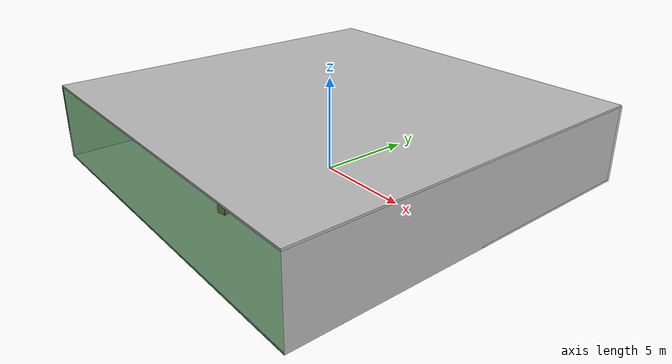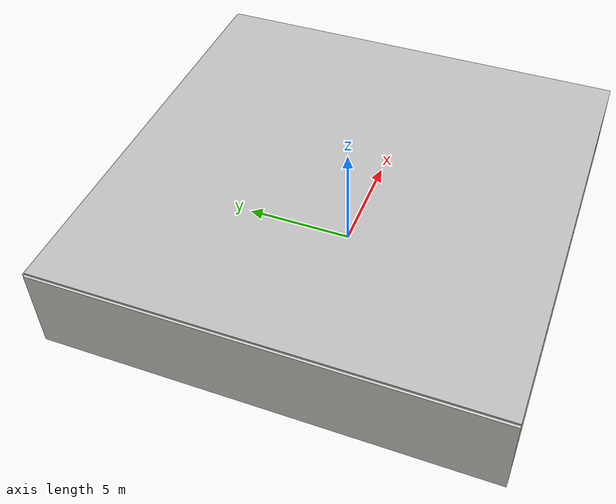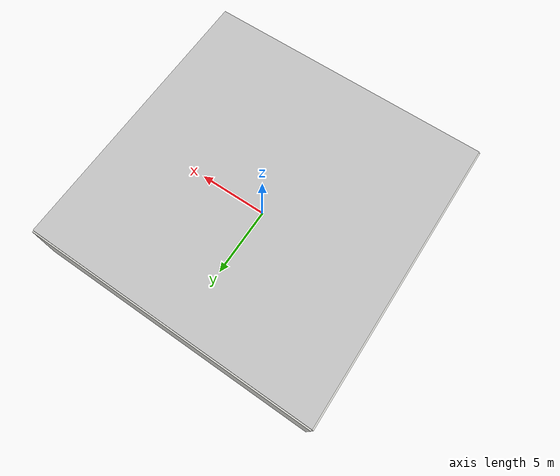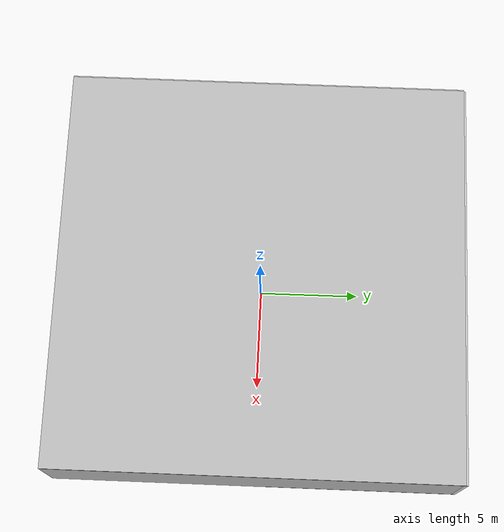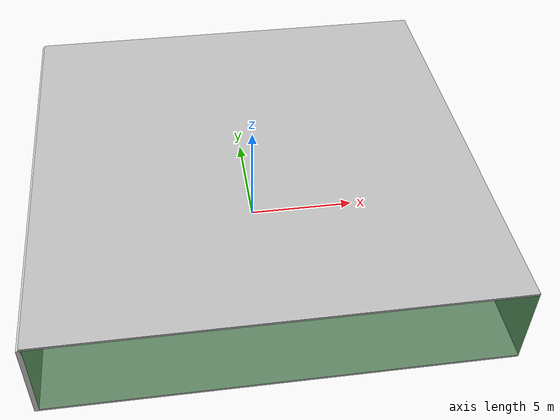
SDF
<sdf version="1.4">
 <world name="default">
  <physics type="ode">
   <max_step_size>0.001</max_step_size>
   <real_time_factor>1</real_time_factor>
   <real_time_update_rate>1000</real_time_update_rate>
   <gravity>0 0 -9.8</gravity>
  </physics>
  <scene><ambient>0.4 0.4 0.4 1</ambient><background>0.7 0.7 0.7 1</background><shadows>1</shadows></scene>
  <model name="Surrounding">
   <static>1</static>
   <link name="Ceiling">
    <collision name="Ceiling_Collision"><geometry><box><size>20 20 0.1</size></box></geometry></collision>
    <visual name="Ceiling_Visual">
     <geometry><box><size>20 20 0.1</size></box></geometry>
     <material>
      <script><uri>file://media/materials/scripts/gazebo.material</uri><name>Gazebo/LightOff</name></script>
     </material>
    </visual>
    <pose>0 0 4.05 0 0 0</pose>
   </link>
   <link name="Wall_South">
    <collision name="Wall_South_Collision">
     <geometry><box><size>20 0 4</size></box></geometry>
     <pose>0 0 2 0 -0 0</pose>
    </collision>
    <visual name="Wall_South_Visual">
     <pose>0 0 2 0 -0 0</pose>
     <geometry><box><size>20 0 4</size></box></geometry>
     <material>
      <script><uri>file://media/materials/scripts/gazebo.material</uri><name>Gazebo/GreenTransparent</name></script>
     </material>
    </visual>
    <velocity_decay><linear>0</linear><angular>0</angular></velocity_decay>
    <pose>0 -10 0 0 -0 0</pose>
   </link>
   <link name="Wall_East">
    <collision name="Wall_21_Collision">
     <geometry><box><size>20 0 4</size></box></geometry>
     <pose>0 0 2 0 -0 0</pose>
    </collision>
    <visual name="Wall_21_Visual">
     <pose>0 0 2 0 -0 0</pose>
     <geometry><box><size>20 0 4</size></box></geometry>
     <material>
      <script><uri>file://media/materials/scripts/gazebo.material</uri><name>Gazebo/PioneerBody</name></script>
     </material>
    </visual>
    <velocity_decay><linear>0</linear><angular>0</angular></velocity_decay>
    <pose>10 0 0 0 -0 1.5708</pose>
   </link>
   <link name="Wall_North">
    <collision name="Wall_22_Collision">
     <geometry><box><size>20 0.2 4</size></box></geometry>
     <pose>0 0 2 0 -0 0</pose>
    </collision>
    <visual name="Wall_22_Visual">
     <pose>0 0 2 0 -0 0</pose>
     <geometry><box><size>20 0.2 4</size></box></geometry>
     <material>
      <script><uri>file://media/materials/scripts/gazebo.material</uri><name>Gazebo/CeilingTiled</name></script>
     </material>
    </visual>
    <velocity_decay><linear>0</linear><angular>0</angular></velocity_decay>
    <pose>0 10 0 0 -0 0</pose>
   </link>
   <link name="Wall_West">
    <collision name="Wall_23_Collision">
     <geometry><box><size>20 0.2 4</size></box></geometry>
     <pose>0 0 2 0 -0 0</pose>
    </collision>
    <visual name="Wall_23_Visual">
     <pose>0 0 2 0 -0 0</pose>
     <geometry><box><size>20 0.2 4</size></box></geometry>
     <material>
      <script><uri>file://media/materials/scripts/gazebo.material</uri><name>Gazebo/CeilingTiled</name></script>
     </material>
    </visual>
    <velocity_decay><linear>0</linear><angular>0</angular></velocity_decay>
    <pose>-10 0 0 0 0 -1.5708</pose>
   </link>
   <link name="Ground_link">
    <collision name="collision">
     <pose>0 0 .05 0 -0 0</pose>
     <geometry><box><size>20 20 0.1</size></box></geometry>
    </collision>
    <visual name="visual">
     <pose>0 0 .05 0 -0 0</pose>
     <geometry><box><size>20 20 0.1</size></box></geometry>
     <material>
      <script><uri>file://media/materials/scripts/gazebo.material</uri><name>Gazebo/Pioneer2Body</name></script>
     </material>
    </visual>
   </link>
   <static>1</static>
  </model>
  <spherical_coordinates>
   <surface_model>EARTH_WGS84</surface_model>
   <latitude_deg>0</latitude_deg>
   <longitude_deg>0</longitude_deg>
   <elevation>0</elevation>
   <heading_deg>0</heading_deg>
  </spherical_coordinates>
  <light name="lightball_0" type="diffuse">
   <diffuse>0.8 0.8 0.8 1</diffuse>
   <specular>0.2 0.2 0.2 1</specular>
   <attenuation>
    <range>100</range>
    <constant>0.7</constant>
    <linear>0.01</linear>
    <quadratic>0.001</quadratic>
   </attenuation>
   <direction>-0.5 0.1 -0.9</direction>
   <pose>-4.12376330719 5.85121611135 2.19382287035 0 0 0</pose>
  </light>
  <light name="lightball_1" type="diffuse">
   <diffuse>0.8 0.8 0.8 1</diffuse>
   <specular>0.2 0.2 0.2 1</specular>
   <attenuation>
    <range>100</range>
    <constant>0.7</constant>
    <linear>0.01</linear>
    <quadratic>0.001</quadratic>
   </attenuation>
   <direction>-0.5 0.1 -0.9</direction>
   <pose>-7.92553679052 0.951721687002 3.41735487929 0 0 0</pose>
  </light>
  <light name="lightball_2" type="diffuse">
   <diffuse>0.8 0.8 0.8 1</diffuse>
   <specular>0.2 0.2 0.2 1</specular>
   <attenuation>
    <range>100</range>
    <constant>0.7</constant>
    <linear>0.01</linear>
    <quadratic>0.001</quadratic>
   </attenuation>
   <direction>-0.5 0.1 -0.9</direction>
   <pose>1.21670074359 -4.04785807269 1.91126196494 0 0 0</pose>
  </light>
  <light name="lightball_3" type="diffuse">
   <diffuse>0.8 0.8 0.8 1</diffuse>
   <specular>0.2 0.2 0.2 1</specular>
   <attenuation>
    <range>100</range>
    <constant>0.7</constant>
    <linear>0.01</linear>
    <quadratic>0.001</quadratic>
   </attenuation>
   <direction>-0.5 0.1 -0.9</direction>
   <pose>-4.16918058227 -9.42164294809 1.58947005077 0 0 0</pose>
  </light>
  <light name="lightball_4" type="diffuse">
   <diffuse>0.8 0.8 0.8 1</diffuse>
   <specular>0.2 0.2 0.2 1</specular>
   <attenuation>
    <range>100</range>
    <constant>0.7</constant>
    <linear>0.01</linear>
    <quadratic>0.001</quadratic>
   </attenuation>
   <direction>-0.5 0.1 -0.9</direction>
   <pose>8.54515091841 5.51217787063 3.35448172835 0 0 0</pose>
  </light>
  <light name="lightball_5" type="diffuse">
   <diffuse>0.8 0.8 0.8 1</diffuse>
   <specular>0.2 0.2 0.2 1</specular>
   <attenuation>
    <range>100</range>
    <constant>0.7</constant>
    <linear>0.01</linear>
    <quadratic>0.001</quadratic>
   </attenuation>
   <direction>-0.5 0.1 -0.9</direction>
   <pose>8.65875281436 5.14925481764 3.6281196877 0 0 0</pose>
  </light>
  <light name="lightball_6" type="diffuse">
   <diffuse>0.8 0.8 0.8 1</diffuse>
   <specular>0.2 0.2 0.2 1</specular>
   <attenuation>
    <range>100</range>
    <constant>0.7</constant>
    <linear>0.01</linear>
    <quadratic>0.001</quadratic>
   </attenuation>
   <direction>-0.5 0.1 -0.9</direction>
   <pose>-4.28853311154 0.923476718897 1.01474245805 0 0 0</pose>
  </light>
  <light name="lightball_7" type="diffuse">
   <diffuse>0.8 0.8 0.8 1</diffuse>
   <specular>0.2 0.2 0.2 1</specular>
   <attenuation>
    <range>100</range>
    <constant>0.7</constant>
    <linear>0.01</linear>
    <quadratic>0.001</quadratic>
   </attenuation>
   <direction>-0.5 0.1 -0.9</direction>
   <pose>7.36047765015 3.1864137865 1.00074460928 0 0 0</pose>
  </light>
  <light name="lightball_8" type="diffuse">
   <diffuse>0.8 0.8 0.8 1</diffuse>
   <specular>0.2 0.2 0.2 1</specular>
   <attenuation>
    <range>100</range>
    <constant>0.7</constant>
    <linear>0.01</linear>
    <quadratic>0.001</quadratic>
   </attenuation>
   <direction>-0.5 0.1 -0.9</direction>
   <pose>-1.56166151671 -1.79092988056 3.14472831045 0 0 0</pose>
  </light>
  <light name="lightball_9" type="diffuse">
   <diffuse>0.8 0.8 0.8 1</diffuse>
   <specular>0.2 0.2 0.2 1</specular>
   <attenuation>
    <range>100</range>
    <constant>0.7</constant>
    <linear>0.01</linear>
    <quadratic>0.001</quadratic>
   </attenuation>
   <direction>-0.5 0.1 -0.9</direction>
   <pose>-0.984805507891 -7.91222642071 3.69807013549 0 0 0</pose>
  </light>
  <light name="lightball_10" type="diffuse">
   <diffuse>0.8 0.8 0.8 1</diffuse>
   <specular>0.2 0.2 0.2 1</specular>
   <attenuation>
    <range>100</range>
    <constant>0.7</constant>
    <linear>0.01</linear>
    <quadratic>0.001</quadratic>
   </attenuation>
   <direction>-0.5 0.1 -0.9</direction>
   <pose>-1.55536863318 9.28261788121 2.27128942317 0 0 0</pose>
  </light>
  <light name="lightball_11" type="diffuse">
   <diffuse>0.8 0.8 0.8 1</diffuse>
   <specular>0.2 0.2 0.2 1</specular>
   <attenuation>
    <range>100</range>
    <constant>0.7</constant>
    <linear>0.01</linear>
    <quadratic>0.001</quadratic>
   </attenuation>
   <direction>-0.5 0.1 -0.9</direction>
   <pose>-8.68292831302 3.07763707431 2.60210696873 0 0 0</pose>
  </light>
  <include>
   <uri>model://robocup_3Dsim_goal</uri>
   <pose>-6.7082950657 -2.55018404484 0 0 0 0.787630301018</pose>
  </include>
  <include><uri>model://cabinet</uri><pose>-1.76227502326 8.65503061838 0 0 0 1.0471218435</pose></include>
  <include><uri>model://cabinet</uri><pose>0.702491511673 -6.77168449922 0 0 0 0.223947587792</pose></include>
  <include><uri>model://cabinet</uri><pose>5.52190050941 6.66096436607 0 0 0 2.63473875494</pose></include>
 </world>
</sdf>

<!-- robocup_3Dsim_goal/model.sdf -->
<sdf version="1.5">
  <model name="robocup_3d_goal">
    <static>true</static>
    <link name="left_post">
      <pose>0 1.05 0.45 0 0 0</pose>
      <collision name="collision">
        <geometry>
          <cylinder>
            <radius>0.05</radius>
            <length>0.9</length>
          </cylinder>
        </geometry>
      </collision>
      <visual name="visual">
        <geometry>
          <cylinder>
            <radius>0.05</radius>
            <length>0.9</length>
          </cylinder>
        </geometry>
        <material>
          <script>
            <uri>file://media/materials/scripts/gazebo.material</uri>
            <name>Gazebo/ZincYellow</name>
          </script>
        </material>
      </visual>
    </link>
    <link name="left_support_horiz_lower">
      <pose>0.30 1.05 0.01 0 0 0</pose>
      <collision name="collision">
        <geometry>
          <box>
            <size>0.50 0.02 0.02</size>
          </box>
        </geometry>
      </collision>
      <visual name="visual">
        <geometry>
          <box>
            <size>0.50 0.02 0.02</size>
          </box>
        </geometry>
        <material>
          <script>
            <uri>file://media/materials/scripts/gazebo.material</uri>
            <name>Gazebo/White</name>
          </script>
        </material>
      </visual>
    </link>
    <link name="left_support_horiz_upper">
      <pose>0.30 1.05 0.79 0 0 0</pose>
      <collision name="collision">
        <geometry>
          <box>
            <size>0.50 0.02 0.02</size>
          </box>
        </geometry>
      </collision>
      <visual name="visual">
        <geometry>
          <box>
            <size>0.50 0.02 0.02</size>
          </box>
        </geometry>
        <material>
          <script>
            <uri>file://media/materials/scripts/gazebo.material</uri>
            <name>Gazebo/White</name>
          </script>
        </material>
      </visual>
    </link>
    <link name="left_support_vertical">
      <pose>0.56 1.05 0.4 0 1.5708 0</pose>
      <collision name="collision">
        <geometry>
          <box>
            <size>0.80 0.02 0.02</size>
          </box>
        </geometry>
      </collision>
      <visual name="visual">
        <geometry>
          <box>
            <size>0.80 0.02 0.02</size>
          </box>
        </geometry>
        <material>
          <script>
            <uri>file://media/materials/scripts/gazebo.material</uri>
            <name>Gazebo/White</name>
          </script>
        </material>
      </visual>
    </link>
    <link name="right_support_horiz_lower">
      <pose>0.30 -1.05 0.01 0 0 0</pose>
      <collision name="collision">
        <geometry>
          <box>
            <size>0.50 0.02 0.02</size>
          </box>
        </geometry>
      </collision>
      <visual name="visual">
        <geometry>
          <box>
            <size>0.50 0.02 0.02</size>
          </box>
        </geometry>
        <material>
          <script>
            <uri>file://media/materials/scripts/gazebo.material</uri>
            <name>Gazebo/White</name>
          </script>
        </material>
      </visual>
    </link>
    <link name="right_support_horiz_upper">
      <pose>0.30 -1.05 0.79 0 0 0</pose>
      <collision name="collision">
        <geometry>
          <box>
            <size>0.50 0.02 0.02</size>
          </box>
        </geometry>
      </collision>
      <visual name="visual">
        <geometry>
          <box>
            <size>0.50 0.02 0.02</size>
          </box>
        </geometry>
        <material>
          <script>
            <uri>file://media/materials/scripts/gazebo.material</uri>
            <name>Gazebo/White</name>
          </script>
        </material>
      </visual>
    </link>
    <link name="right_support_vertical">
      <pose>0.56 -1.05 0.4 0 1.5708 0</pose>
      <collision name="collision">
        <geometry>
          <box>
            <size>0.80 0.02 0.02</size>
          </box>
        </geometry>
      </collision>
      <visual name="visual">
        <geometry>
          <box>
            <size>0.80 0.02 0.02</size>
          </box>
        </geometry>
        <material>
          <script>
            <uri>file://media/materials/scripts/gazebo.material</uri>
            <name>Gazebo/White</name>
          </script>
        </material>
      </visual>
    </link>
    <link name="center_support_horiz_lower">
      <pose>0.56 0 0.01 0 1.5708 0</pose>
      <collision name="collision">
        <geometry>
          <box>
            <size>0.02 2.08 0.02</size>
          </box>
        </geometry>
      </collision>
      <visual name="visual">
        <geometry>
          <box>
            <size>0.02 2.08 0.02</size>
          </box>
        </geometry>
        <material>
          <script>
            <uri>file://media/materials/scripts/gazebo.material</uri>
            <name>Gazebo/White</name>
          </script>
        </material>
      </visual>
    </link>
    <link name="center_support_horiz_upper">
      <pose>0.56 0 0.79 0 1.5708 0</pose>
      <collision name="collision">
        <geometry>
          <box>
            <size>0.02 2.08 0.02</size>
          </box>
        </geometry>
      </collision>
      <visual name="visual">
        <geometry>
          <box>
            <size>0.02 2.08 0.02</size>
          </box>
        </geometry>
        <material>
          <script>
            <uri>file://media/materials/scripts/gazebo.material</uri>
            <name>Gazebo/White</name>
          </script>
        </material>
      </visual>
    </link>
    <link name="right_post">
      <pose>0 -1.05 0.45 0 0 0</pose>
      <collision name="collision">
        <geometry>
          <cylinder>
            <radius>0.05</radius>
            <length>0.9</length>
          </cylinder>
        </geometry>
      </collision>
      <visual name="visual">
        <geometry>
          <cylinder>
            <radius>0.05</radius>
            <length>0.9</length>
          </cylinder>
        </geometry>
        <material>
          <script>
            <uri>file://media/materials/scripts/gazebo.material</uri>
            <name>Gazebo/ZincYellow</name>
          </script>
        </material>
      </visual>
    </link>
    <link name="crossbar">
      <pose>0 0 0.85 1.57 1.57 0</pose>
      <collision name="collision">
        <geometry>
          <cylinder>
            <radius>0.05</radius>
            <length>2.0</length>
          </cylinder>
        </geometry>
      </collision>
      <visual name="visual">
        <geometry>
          <cylinder>
            <radius>0.05</radius>
            <length>2.0</length>
          </cylinder>
        </geometry>
        <material>
          <script>
            <uri>file://media/materials/scripts/gazebo.material</uri>
            <name>Gazebo/ZincYellow</name>
          </script>
        </material>
      </visual>
    </link>
    <link name="center_net">
      <pose>0.56 0 0.40 0 0 0</pose>
      <collision name="collision">
        <geometry>
          <box>
            <size>0.01 2.1 0.80</size>
          </box>
        </geometry>
      </collision>
      <visual name="visual">
        <geometry>
          <box>
            <size>0.01 2.1 0.80</size>
          </box>
        </geometry>
        <material>
          <script>
            <uri>model://../model_source/models/robocup09_spl_field/materials/scripts/</uri>
            <uri>model://../model_source/models/robocup09_spl_field/materials/textures/</uri>
            <name>RoboCup/Net</name>
          </script>
        </material>
      </visual>
    </link>
    <link name="left_net">
      <pose>0.30 1.05 0.40 0 0 0</pose>
      <collision name="collision">
        <geometry>
          <box>
            <size>0.50 0.01 0.76</size>
          </box>
        </geometry>
      </collision>
      <visual name="visual">
        <geometry>
          <box>
            <size>0.50 0.01 0.76</size>
          </box>
        </geometry>
        <material>
          <script>
            <uri>model://../model_source/models/robocup09_spl_field/materials/scripts/</uri>
            <uri>model://../model_source/models/robocup09_spl_field/materials/textures/</uri>
            <name>RoboCup/Net</name>
          </script>
        </material>
      </visual>
    </link>
    <link name="right_net">
      <pose>0.30 -1.05 0.40 0 0 0</pose>
      <collision name="collision">
        <geometry>
          <box>
            <size>0.50 0.01 0.76</size>
          </box>
        </geometry>
      </collision>
      <visual name="visual">
        <geometry>
          <box>
            <size>0.50 0.01 0.76</size>
          </box>
        </geometry>
        <material>
          <script>
            <uri>model://../model_source/models/robocup09_spl_field/materials/scripts/</uri>
            <uri>model://../model_source/models/robocup09_spl_field/materials/textures/</uri>
            <name>RoboCup/Net</name>
          </script>
        </material>
      </visual>
    </link>
  </model>
</sdf>

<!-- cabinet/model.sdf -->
<sdf version="1.5">
  <model name="cabinet">
    <static>true</static>
    <link name="cabinet_bottom_plate">
      <inertial>
        <pose>0 0 -1 0 0 0</pose>
        <inertia>
          <ixx>2.050000</ixx>
          <ixy>0</ixy>
          <ixz>0</ixz>
          <iyy>2.050000</iyy>
          <iyz>0</iyz>
          <izz>2.050000</izz>
        </inertia>
        <mass>25.000000</mass>
      </inertial>
      <collision name="cabinet_bottom_plate_geom">
        <pose>0 0 0.010000 0 0 0</pose>
        <geometry>
          <box>
            <size>0.450000 0.450000 0.020000</size>
          </box>
        </geometry>
      </collision>
      <visual name="cabinet_bottom_plate_geom_visual">
        <pose>0 0 0.010000 0 0 0</pose>
        <geometry>
          <box>
            <size>0.450000 0.450000 0.020000</size>
          </box>
        </geometry>
        <material>
          <script>
            <uri>model://media/materials/scripts/gazebo.material</uri>
            <name>Gazebo/Wood</name>
          </script>
        </material>
      </visual>
      <collision name="cabinet_bottom_plate_geom_cabinet_back_plate">
        <pose>0.235000 0 0.510000 0 0 0</pose>
        <geometry>
          <box>
            <size>0.020000 0.450000 1.020000</size>
          </box>
        </geometry>
      </collision>
      <visual name="cabinet_bottom_plate_geom_cabinet_back_plate_visual">
        <pose>0.235000 0 0.510000 0 0 0</pose>
        <geometry>
          <box>
            <size>0.020000 0.450000 1.020000</size>
          </box>
        </geometry>
        <material>
          <script>
            <uri>model://media/materials/scripts/gazebo.material</uri>
            <name>Gazebo/Wood</name>
          </script>
        </material>
      </visual>
      <collision name="cabinet_bottom_plate_geom_cabinet_left_plate">
        <pose>0 0.235000 0.510000 0 0 0</pose>
        <geometry>
          <box>
            <size>0.450000 0.020000 1.020000</size>
          </box>
        </geometry>
      </collision>
      <visual name="cabinet_bottom_plate_geom_cabinet_left_plate_visual">
        <pose>0 0.235000 0.510000 0 0 0</pose>
        <geometry>
          <box>
            <size>0.450000 0.020000 1.020000</size>
          </box>
        </geometry>
        <material>
          <script>
            <uri>model://media/materials/scripts/gazebo.material</uri>
            <name>Gazebo/Wood</name>
          </script>
        </material>
      </visual>
      <collision name="cabinet_bottom_plate_geom_cabinet_middle_plate">
        <pose>0 0 0.510000 0 0 0</pose>
        <geometry>
          <box>
            <size>0.450000 0.450000 0.020000</size>
          </box>
        </geometry>
      </collision>
      <visual name="cabinet_bottom_plate_geom_cabinet_middle_plate_visual">
        <pose>0 0 0.510000 0 0 0</pose>
        <geometry>
          <box>
            <size>0.450000 0.450000 0.020000</size>
          </box>
        </geometry>
        <material>
          <script>
            <uri>model://media/materials/scripts/gazebo.material</uri>
            <name>Gazebo/Wood</name>
          </script>
        </material>
      </visual>
      <collision name="cabinet_bottom_plate_geom_cabinet_right_plate">
        <pose>0 -0.235000 0.510000 0 0 0</pose>
        <geometry>
          <box>
            <size>0.450000 0.020000 1.020000</size>
          </box>
        </geometry>
      </collision>
      <visual name="cabinet_bottom_plate_geom_cabinet_right_plate_visual">
        <pose>0 -0.235000 0.510000 0 0 0</pose>
        <geometry>
          <box>
            <size>0.450000 0.020000 1.020000</size>
          </box>
        </geometry>
        <material>
          <script>
            <uri>model://media/materials/scripts/gazebo.material</uri>
            <name>Gazebo/Wood</name>
          </script>
        </material>
      </visual>
      <collision name="cabinet_bottom_plate_geom_cabinet_top_plate">
        <pose>0 0 1.010000 0 0 0</pose>
        <geometry>
          <box>
            <size>0.450000 0.450000 0.020000</size>
          </box>
        </geometry>
      </collision>
      <visual name="cabinet_bottom_plate_geom_cabinet_top_plate_visual">
        <pose>0 0 1.010000 0 0 0</pose>
        <geometry>
          <box>
            <size>0.450000 0.450000 0.020000</size>
          </box>
        </geometry>
        <material>
          <script>
            <uri>model://media/materials/scripts/gazebo.material</uri>
            <name>Gazebo/Wood</name>
          </script>
        </material>
      </visual>
    </link>
  </model>
</sdf>
